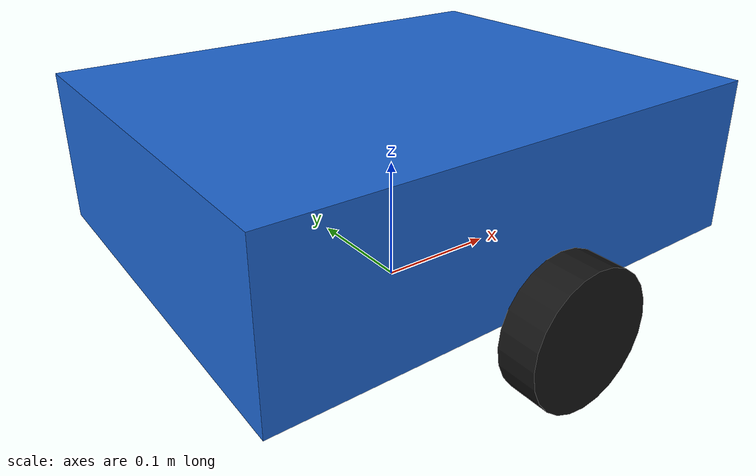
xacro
<?xml version="1.0"?>
<robot xmlns:xacro="http://www.ros.org/wiki/xacro" name="edgeswarm_amr">
  <xacro:arg name="prefix" default=""/>
  <xacro:property name="p" value="$(arg prefix)"/>
  <link name="${p}base_footprint"/>
  <link name="${p}base_link">
    <inertial><origin xyz="0 0 0.06"/><mass value="6.0"/><inertia ixx="0.0584" ixy="0" ixz="0" iyy="0.0872" iyz="0" izz="0.1312"/></inertial>
    <visual><origin xyz="0 0 0.06"/><geometry><box size="0.40 0.32 0.12"/></geometry><material name="blue"><color rgba="0.12 0.4 0.82 1"/></material></visual>
    <collision><origin xyz="0 0 0.06"/><geometry><box size="0.40 0.32 0.12"/></geometry></collision>
  </link>
  <joint name="${p}base_footprint_joint" type="fixed"><parent link="${p}base_footprint"/><child link="${p}base_link"/><origin xyz="0 0 0.05"/></joint>
  <xacro:macro name="wheel" params="side y">
    <link name="${p}wheel_${side}">
      <inertial><mass value="0.3"/><inertia ixx="0.00021" ixy="0" ixz="0" iyy="0.00021" iyz="0" izz="0.000375"/></inertial>
      <visual><origin rpy="1.5707963 0 0"/><geometry><cylinder radius="0.05" length="0.03"/></geometry><material name="rubber"><color rgba="0.08 0.08 0.08 1"/></material></visual>
      <collision><origin rpy="1.5707963 0 0"/><geometry><cylinder radius="0.05" length="0.03"/></geometry></collision>
    </link>
    <joint name="${p}${side}_wheel_joint" type="continuous"><parent link="${p}base_link"/><child link="${p}wheel_${side}"/><origin xyz="0 ${y} 0"/><axis xyz="0 1 0"/></joint>
  </xacro:macro>
  <xacro:wheel side="left" y="0.19"/><xacro:wheel side="right" y="-0.19"/>
  <link name="${p}laser_link"/><joint name="${p}laser_joint" type="fixed"><parent link="${p}base_link"/><child link="${p}laser_link"/><origin xyz="0 0 0.15"/></joint>
  <link name="${p}imu_link"/><joint name="${p}imu_joint" type="fixed"><parent link="${p}base_link"/><child link="${p}imu_link"/><origin xyz="0 0 0.08"/></joint>
</robot>
